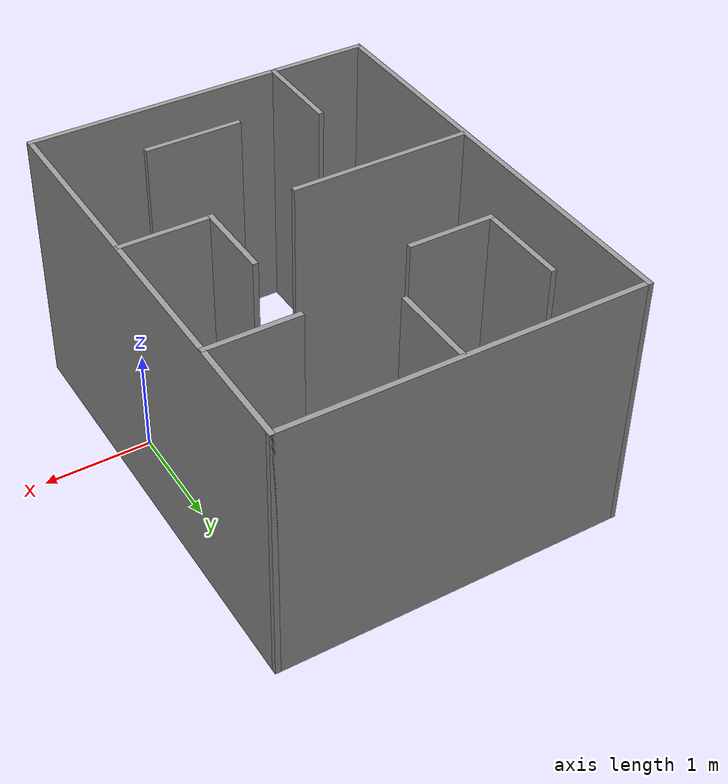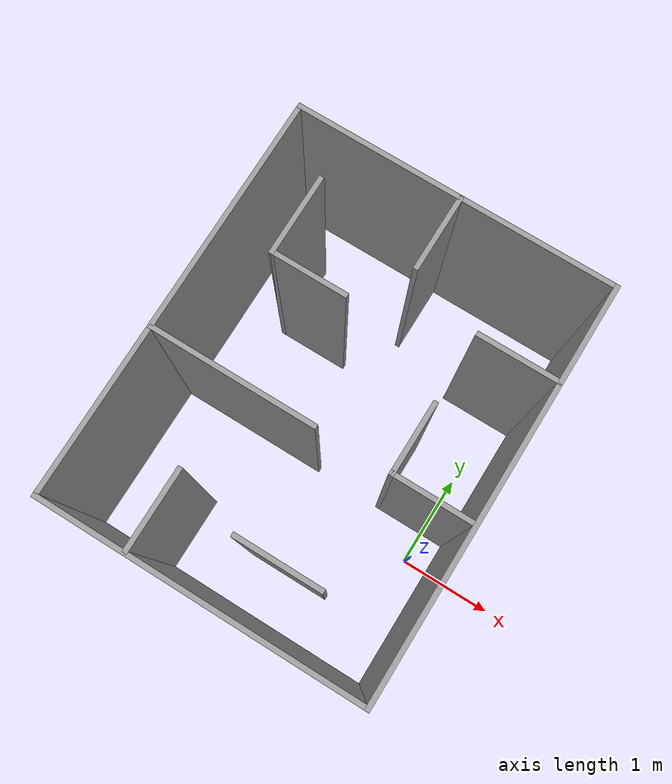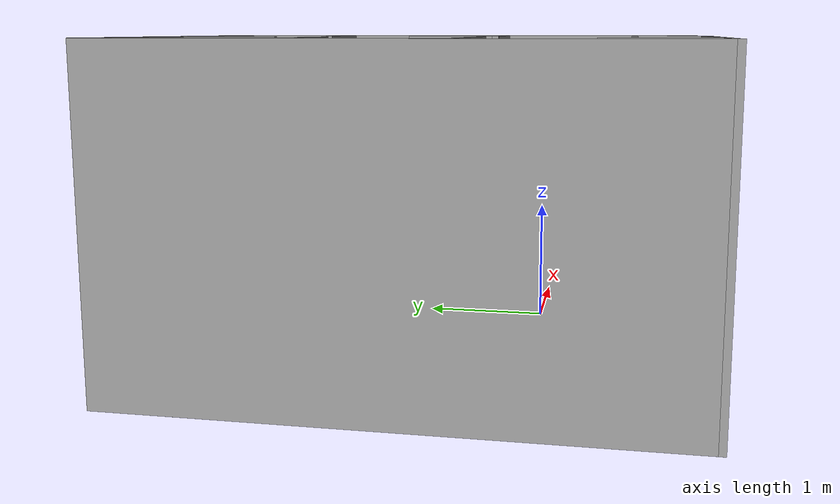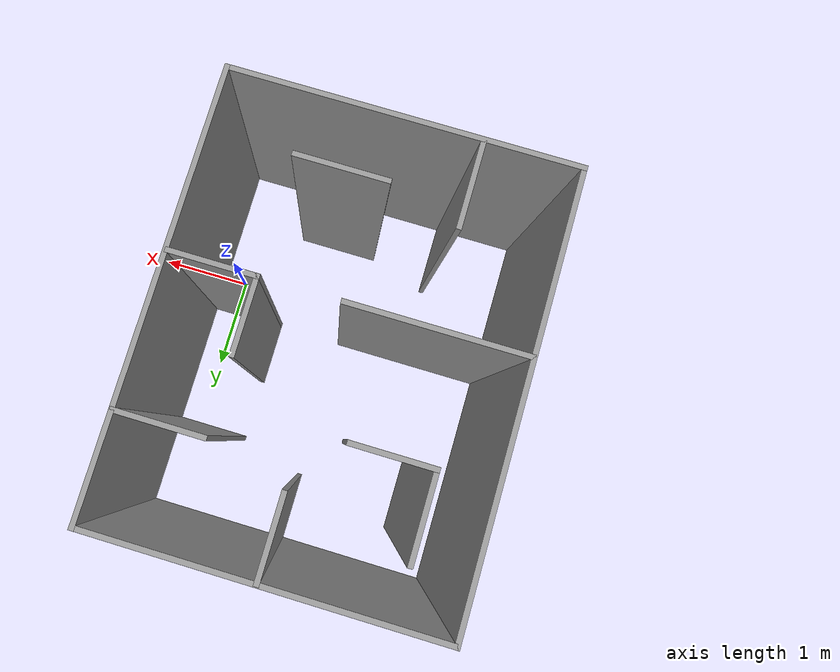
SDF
<?xml version='1.0'?>
<sdf version='1.7'>
  <model name='level'>
    <pose>-1.355 0.712 0 0 -0 0</pose>
    <link name='Wall_0'>
      <collision name='Wall_0_Collision'>
        <geometry>
          <box>
            <size>4.2 0.05 2.5</size>
          </box>
        </geometry>
        <pose>0 0 1.25 0 -0 0</pose>
      </collision>
      <visual name='Wall_0_Visual'>
        <pose>0 0 1.25 0 -0 0</pose>
        <geometry>
          <box>
            <size>4.2 0.05 2.5</size>
          </box>
        </geometry>
        <material>
          <script>
            <uri>file://media/materials/scripts/gazebo.material</uri>
            <name>Gazebo/Grey</name>
          </script>
          <ambient>1 1 1 1</ambient>
        </material>
        <meta>
          <layer>0</layer>
        </meta>
      </visual>
      <pose>-1.625 -0 0 0 -0 1.5708</pose>
    </link>
    <link name='Wall_20'>
      <collision name='Wall_20_Collision'>
        <geometry>
          <box>
            <size>0.85 0.05 2.5</size>
          </box>
        </geometry>
        <pose>0 0 1.25 0 -0 0</pose>
      </collision>
      <visual name='Wall_20_Visual'>
        <pose>0 0 1.25 0 -0 0</pose>
        <geometry>
          <box>
            <size>0.85 0.05 2.5</size>
          </box>
        </geometry>
        <material>
          <script>
            <uri>file://media/materials/scripts/gazebo.material</uri>
            <name>Gazebo/Grey</name>
          </script>
          <ambient>1 1 1 1</ambient>
        </material>
        <meta>
          <layer>0</layer>
        </meta>
      </visual>
      <pose>-0.725 -1.658 0 0 -0 1.5708</pose>
    </link>
    <link name='Wall_22'>
      <collision name='Wall_22_Collision'>
        <geometry>
          <box>
            <size>0.899931 0.05 2.5</size>
          </box>
        </geometry>
        <pose>0 0 1.25 0 -0 0</pose>
      </collision>
      <visual name='Wall_22_Visual'>
        <pose>0 0 1.25 0 -0 0</pose>
        <geometry>
          <box>
            <size>0.899931 0.05 2.5</size>
          </box>
        </geometry>
        <material>
          <script>
            <uri>file://media/materials/scripts/gazebo.material</uri>
            <name>Gazebo/Grey</name>
          </script>
          <ambient>1 1 1 1</ambient>
        </material>
        <meta>
          <layer>0</layer>
        </meta>
      </visual>
      <pose>0.393 -1.479 0 0 -0 0</pose>
    </link>
    <link name='Wall_24'>
      <collision name='Wall_24_Collision'>
        <geometry>
          <box>
            <size>1.7 0.05 2.5</size>
          </box>
        </geometry>
        <pose>0 0 1.25 0 -0 0</pose>
      </collision>
      <visual name='Wall_24_Visual'>
        <pose>0 0 1.25 0 -0 0</pose>
        <geometry>
          <box>
            <size>1.7 0.05 2.5</size>
          </box>
        </geometry>
        <material>
          <script>
            <uri>file://media/materials/scripts/gazebo.material</uri>
            <name>Gazebo/Grey</name>
          </script>
          <ambient>1 1 1 1</ambient>
        </material>
        <meta>
          <layer>0</layer>
        </meta>
      </visual>
      <pose>-0.787 -0.349 0 0 -0 0</pose>
    </link>
    <link name='Wall_26'>
      <collision name='Wall_26_Collision'>
        <geometry>
          <box>
            <size>0.85 0.05 2.5</size>
          </box>
        </geometry>
        <pose>0 0 1.25 0 -0 0</pose>
      </collision>
      <visual name='Wall_26_Visual'>
        <pose>0 0 1.25 0 -0 0</pose>
        <geometry>
          <box>
            <size>0.85 0.05 2.5</size>
          </box>
        </geometry>
        <material>
          <script>
            <uri>file://media/materials/scripts/gazebo.material</uri>
            <name>Gazebo/Grey</name>
          </script>
          <ambient>1 1 1 1</ambient>
        </material>
        <meta>
          <layer>0</layer>
        </meta>
      </visual>
      <pose>1.207 -0.349 0 0 -0 3.14159</pose>
    </link>
    <link name='Wall_28'>
      <collision name='Wall_28_Collision'>
        <geometry>
          <box>
            <size>0.75 0.05 2.5</size>
          </box>
        </geometry>
        <pose>0 0 1.25 0 -0 0</pose>
      </collision>
      <visual name='Wall_28_Visual'>
        <pose>0 0 1.25 0 -0 0</pose>
        <geometry>
          <box>
            <size>0.75 0.05 2.5</size>
          </box>
        </geometry>
        <material>
          <script>
            <uri>file://media/materials/scripts/gazebo.material</uri>
            <name>Gazebo/Grey</name>
          </script>
          <ambient>1 1 1 1</ambient>
        </material>
        <meta>
          <layer>0</layer>
        </meta>
      </visual>
      <pose>0.807 0.001 0 0 -0 1.5708</pose>
    </link>
    <link name='Wall_30'>
      <collision name='Wall_30_Collision'>
        <geometry>
          <box>
            <size>0.85 0.05 2.5</size>
          </box>
        </geometry>
        <pose>0 0 1.25 0 -0 0</pose>
      </collision>
      <visual name='Wall_30_Visual'>
        <pose>0 0 1.25 0 -0 0</pose>
        <geometry>
          <box>
            <size>0.85 0.05 2.5</size>
          </box>
        </geometry>
        <material>
          <script>
            <uri>file://media/materials/scripts/gazebo.material</uri>
            <name>Gazebo/Grey</name>
          </script>
          <ambient>1 1 1 1</ambient>
        </material>
        <meta>
          <layer>0</layer>
        </meta>
      </visual>
      <pose>1.218 1.075 0 0 -0 3.14159</pose>
    </link>
    <link name='Wall_39'>
      <collision name='Wall_39_Collision'>
        <geometry>
          <box>
            <size>0.85 0.05 2.5</size>
          </box>
        </geometry>
        <pose>0 0 1.25 0 -0 0</pose>
      </collision>
      <visual name='Wall_39_Visual'>
        <pose>0 0 1.25 0 -0 0</pose>
        <geometry>
          <box>
            <size>0.85 0.05 2.5</size>
          </box>
        </geometry>
        <material>
          <script>
            <uri>file://media/materials/scripts/gazebo.material</uri>
            <name>Gazebo/Grey</name>
          </script>
          <ambient>1 1 1 1</ambient>
        </material>
        <meta>
          <layer>0</layer>
        </meta>
      </visual>
      <pose>-1.097 1.175 0 0 -0 -1.5708</pose>
    </link>
    <link name='Wall_41'>
      <collision name='Wall_41_Collision'>
        <geometry>
          <box>
            <size>0.8 0.05 2.5</size>
          </box>
        </geometry>
        <pose>0 0 1.25 0 -0 0</pose>
      </collision>
      <visual name='Wall_41_Visual'>
        <pose>0 0 1.25 0 -0 0</pose>
        <geometry>
          <box>
            <size>0.8 0.05 2.5</size>
          </box>
        </geometry>
        <material>
          <script>
            <uri>file://media/materials/scripts/gazebo.material</uri>
            <name>Gazebo/Grey</name>
          </script>
          <ambient>1 1 1 1</ambient>
        </material>
        <meta>
          <layer>0</layer>
        </meta>
      </visual>
      <pose>-0.722 0.775 0 0 -0 0</pose>
    </link>
    <link name='Wall_43'>
      <collision name='Wall_43_Collision'>
        <geometry>
          <box>
            <size>0.8 0.05 2.5</size>
          </box>
        </geometry>
        <pose>0 0 1.25 0 -0 0</pose>
      </collision>
      <visual name='Wall_43_Visual'>
        <pose>0 0 1.25 0 -0 0</pose>
        <geometry>
          <box>
            <size>0.8 0.05 2.5</size>
          </box>
        </geometry>
        <material>
          <script>
            <uri>file://media/materials/scripts/gazebo.material</uri>
            <name>Gazebo/Grey</name>
          </script>
          <ambient>1 1 1 1</ambient>
        </material>
        <meta>
          <layer>0</layer>
        </meta>
      </visual>
      <pose>0.052764 1.69223 0 0 -0 -1.5708</pose>
    </link>
    <link name='Wall_5'>
      <collision name='Wall_5_Collision'>
        <geometry>
          <box>
            <size>3.3 0.05 2.5</size>
          </box>
        </geometry>
        <pose>0 0 1.25 0 -0 0</pose>
      </collision>
      <visual name='Wall_5_Visual'>
        <pose>0 0 1.25 0 -0 0</pose>
        <geometry>
          <box>
            <size>3.3 0.05 2.5</size>
          </box>
        </geometry>
        <material>
          <script>
            <uri>file://media/materials/scripts/gazebo.material</uri>
            <name>Gazebo/Grey</name>
          </script>
          <ambient>1 1 1 1</ambient>
        </material>
        <meta>
          <layer>0</layer>
        </meta>
      </visual>
      <pose>0 -2.075 0 0 -0 0</pose>
    </link>
    <link name='Wall_7'>
      <collision name='Wall_7_Collision'>
        <geometry>
          <box>
            <size>4.2 0.05 2.5</size>
          </box>
        </geometry>
        <pose>0 0 1.25 0 -0 0</pose>
      </collision>
      <visual name='Wall_7_Visual'>
        <pose>0 0 1.25 0 -0 0</pose>
        <geometry>
          <box>
            <size>4.2 0.05 2.5</size>
          </box>
        </geometry>
        <material>
          <script>
            <uri>file://media/materials/scripts/gazebo.material</uri>
            <name>Gazebo/Grey</name>
          </script>
          <ambient>1 1 1 1</ambient>
        </material>
        <meta>
          <layer>0</layer>
        </meta>
      </visual>
      <pose>1.625 -0 0 0 -0 1.5708</pose>
    </link>
    <link name='Wall_9'>
      <collision name='Wall_9_Collision'>
        <geometry>
          <box>
            <size>3.3 0.05 2.5</size>
          </box>
        </geometry>
        <pose>0 0 1.25 0 -0 0</pose>
      </collision>
      <visual name='Wall_9_Visual'>
        <pose>0 0 1.25 0 -0 0</pose>
        <geometry>
          <box>
            <size>3.3 0.05 2.5</size>
          </box>
        </geometry>
        <material>
          <script>
            <uri>file://media/materials/scripts/gazebo.material</uri>
            <name>Gazebo/Grey</name>
          </script>
          <ambient>1 1 1 1</ambient>
        </material>
        <meta>
          <layer>0</layer>
        </meta>
      </visual>
      <pose>0 2.075 0 0 -0 0</pose>
    </link>
    <static>1</static>
  </model>
</sdf>
